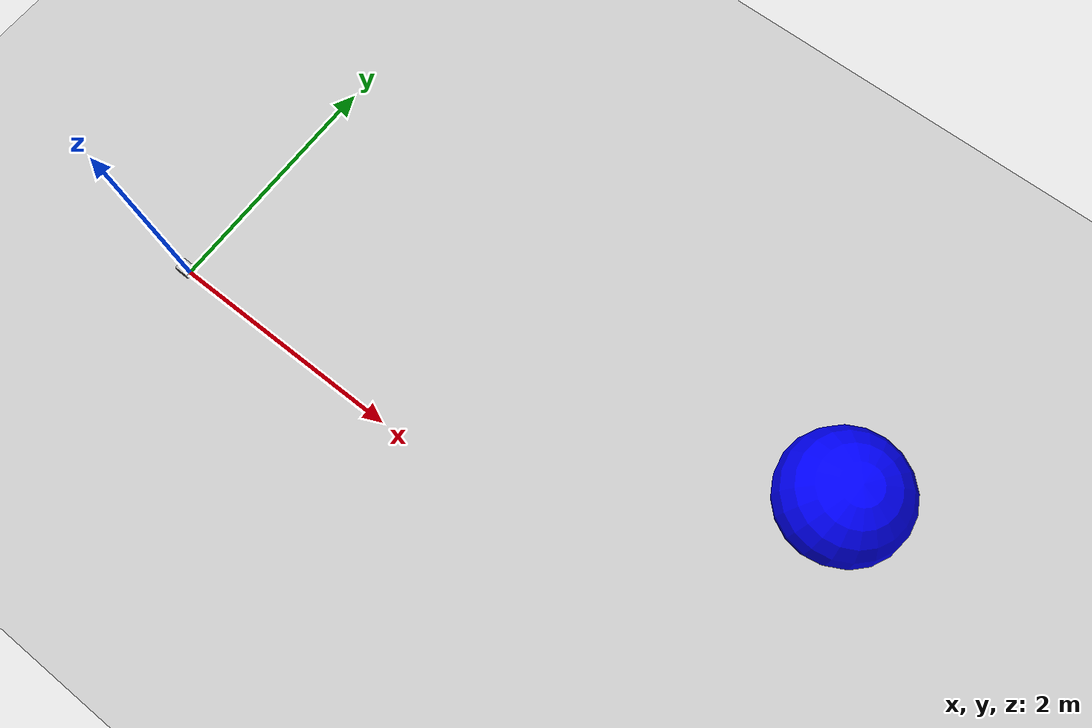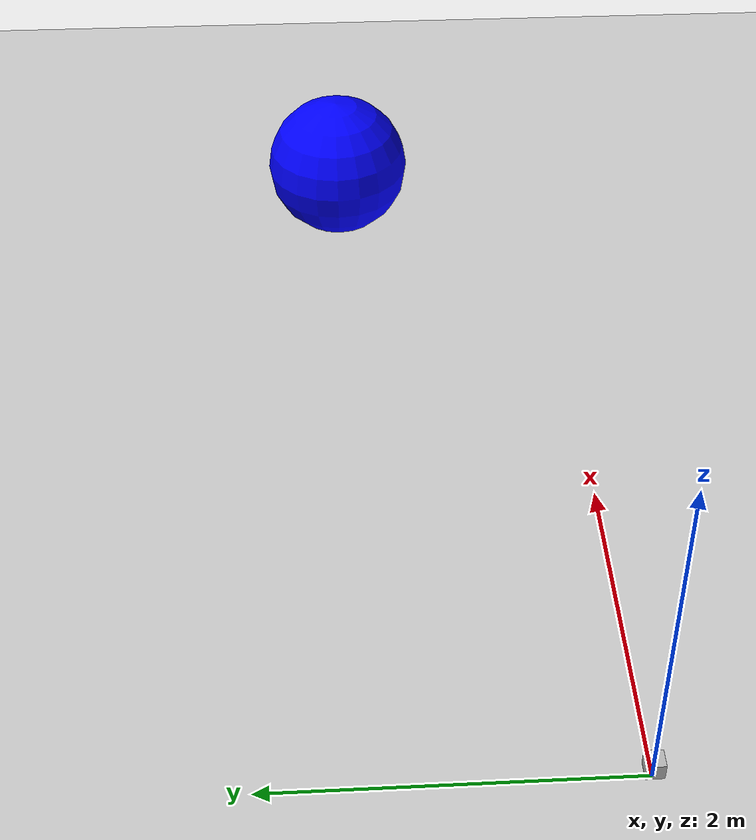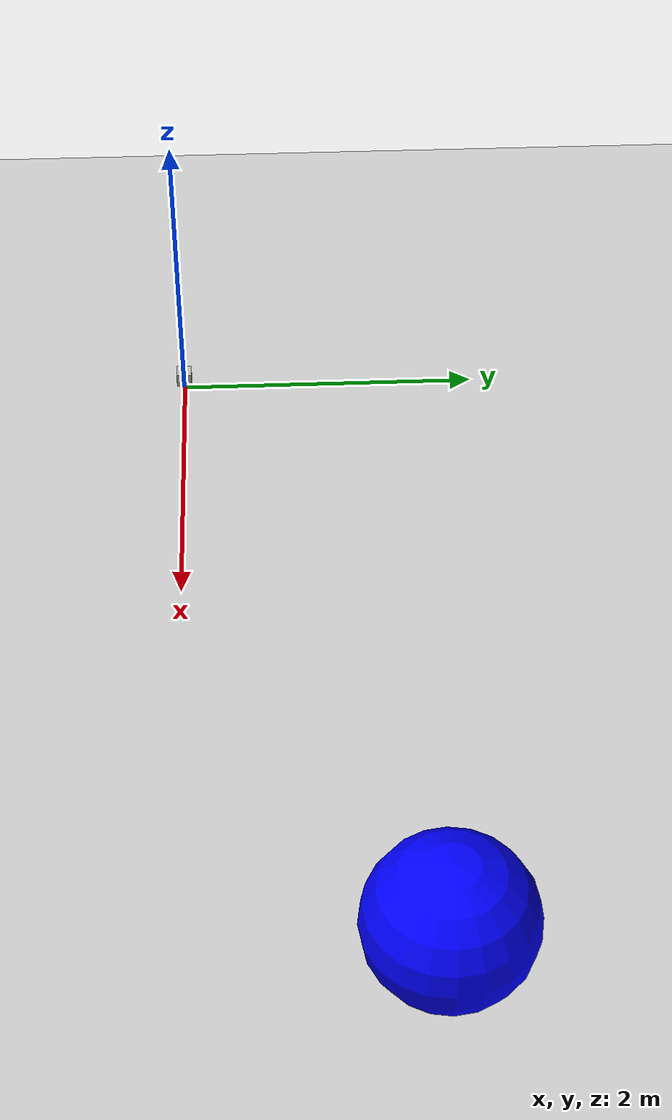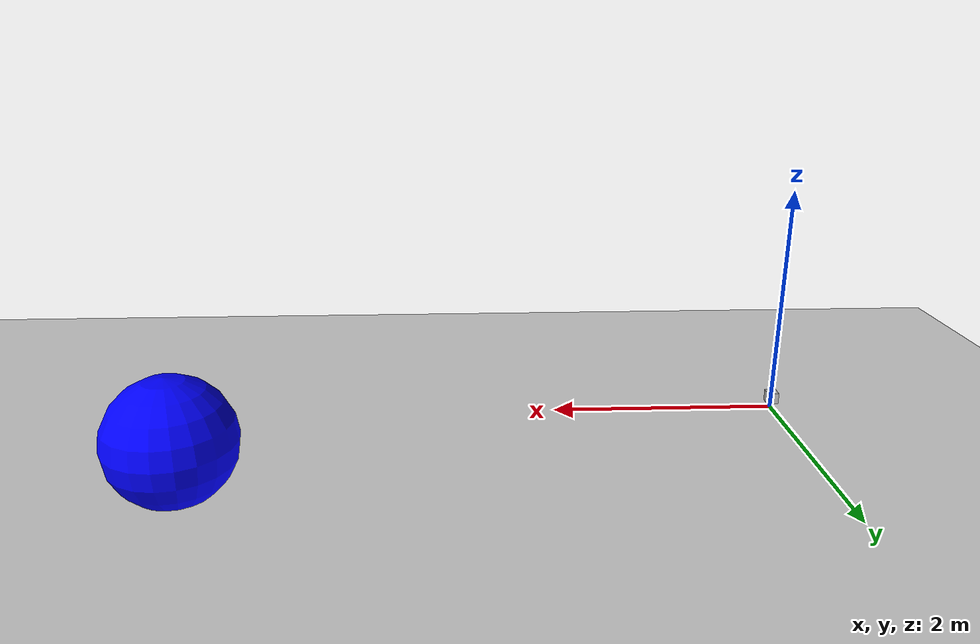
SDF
<?xml version="1.0" ?>

<sdf version="1.6">
  <world name="sensors">
    <physics name="1ms" type="ignored">
      <max_step_size>0.001</max_step_size>
      <real_time_factor>1.0</real_time_factor>
    </physics>
    <plugin
      filename="gz-sim-physics-system"
      name="gz::sim::systems::Physics">
    </plugin>
    <plugin
      filename="gz-sim-user-commands-system"
      name="gz::sim::systems::UserCommands">
    </plugin>
    <plugin
      filename="gz-sim-sensors-system"
      name="gz::sim::systems::Sensors">
    </plugin>
    <plugin
      filename="gz-sim-scene-broadcaster-system"
      name="gz::sim::systems::SceneBroadcaster">
    </plugin>

    <light type="directional" name="sun">
      <cast_shadows>true</cast_shadows>
      <pose>0 0 10 0 0 0</pose>
      <diffuse>0.8 0.8 0.8 1</diffuse>
      <specular>0.2 0.2 0.2 1</specular>
      <attenuation>
        <range>1000</range>
        <constant>0.9</constant>
        <linear>0.01</linear>
        <quadratic>0.001</quadratic>
      </attenuation>
      <direction>-0.5 0.1 -0.9</direction>
    </light>

    <model name="ground_plane">
      <static>true</static>
      <link name="link">
        <collision name="collision">
          <geometry>
            <plane>
              <normal>0 0 1</normal>
              <size>100 100</size>
            </plane>
          </geometry>
        </collision>
        <visual name="visual">
          <geometry>
            <plane>
              <normal>0 0 1</normal>
              <size>100 100</size>
            </plane>
          </geometry>
          <material>
            <ambient>0.8 0.8 0.8 1</ambient>
            <diffuse>0.8 0.8 0.8 1</diffuse>
            <specular>0.8 0.8 0.8 1</specular>
          </material>
        </visual>
      </link>
    </model>

    <model name="camera_model">
      <plugin name="gzyarp::DepthCamera" filename="gz-sim-yarp-depthcamera-system">
        <yarpConfigurationString>(yarpDeviceName depthcamera_plugin_device) (parentLinkName link_1) (sensorName depthcamera_sensor) (display_timestamp) (display_time_box)</yarpConfigurationString>
      </plugin>
      <static>true</static>
      <pose>0 0 0.1 0 0 0</pose>
      <link name="link_1">
        <visual name="visual">
          <geometry>
            <box>
              <size>0.1 0.1 0.1</size>
            </box>
          </geometry>
        </visual>
        <sensor name="depthcamera_sensor" type="rgbd_camera">
          <camera>
            <distortion>
              <k1>1.0</k1>
              <k2>2.0</k2>
              <k3>3.0</k3>
              <p1>4.0</p1>
              <p2>5.0</p2>
              <center> 322 243 </center>
            </distortion>
            <lens>
              <type>pinhole</type>
              <scale_to_hfov>true</scale_to_hfov>
              <intrinsics>
                <fx>554.256</fx>
                <fy>554.256</fy>
                <cx>320.0</cx>
                <cy>240.0</cy>
                <s>0.0</s>
              </intrinsics>
            </lens>
            <horizontal_fov>1.5708</horizontal_fov>
            <image>
              <width>640</width>
              <height>480</height>
            </image>
            <clip>
              <near>0.1</near>
              <far>100</far>
            </clip>
          </camera>
          <always_on>1</always_on>
          <update_rate>30</update_rate>
          <visualize>true</visualize>
        </sensor>
      </link>
      <plugin name="gzyarp::RobotInterface" filename="gz-sim-yarp-robotinterface-system">
        <yarpRobotInterfaceConfigurationFile>model://depthcamera_nws.xml</yarpRobotInterfaceConfigurationFile>
      </plugin>
    </model>

     <model name="sphere">
      <pose>5 1.5 0.5 0 0 0</pose>
      <link name="sphere_link">
        <inertial>
          <inertia>
            <ixx>0.1</ixx>
            <ixy>0</ixy>
            <ixz>0</ixz>
            <iyy>0.1</iyy>
            <iyz>0</iyz>
            <izz>0.1</izz>
          </inertia>
          <mass>1.0</mass>
        </inertial>
        <collision name="sphere_collision">
          <geometry>
            <sphere>
              <radius>0.5</radius>
            </sphere>
          </geometry>
        </collision>

        <visual name="sphere_visual">
          <geometry>
            <sphere>
              <radius>0.5</radius>
            </sphere>
          </geometry>
          <material>
            <ambient>0 0 1 1</ambient>
            <diffuse>0 0 1 1</diffuse>
            <specular>0 0 1 1</specular>
          </material>
        </visual>
      </link>
    </model>

  </world>
</sdf>
